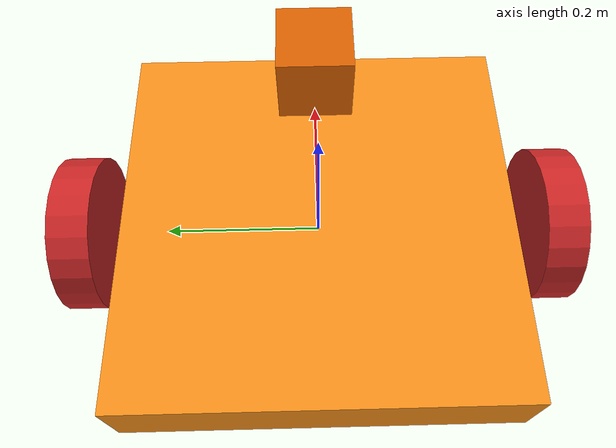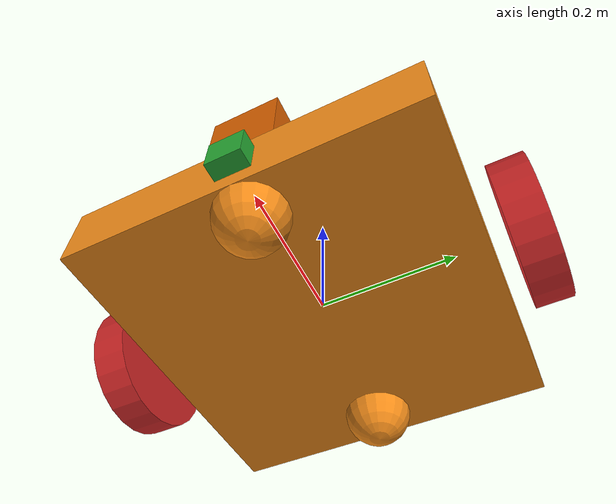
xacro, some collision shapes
<?xml version='1.0'?>
<robot name="my_robot"
    xmlns:xacro="http://www.ros.org/wiki/xacro">
 <xacro:include filename="$(find my_robot)/urdf/my_robot.gazebo" />

<xacro:property name="chassis_width" value="0.5"/>
<xacro:property name="chassis_len" value="0.5"/>
<xacro:property name="chassis_height" value="0.1"/>
<xacro:property name="wheel_radius" value="0.1"/>
<xacro:property name="wheel_depth" value="0.05"/>

<xacro:macro name="box_inertia" params="m w h d">
    <inertial>
      <mass value="${m}"/>
      <inertia ixx="${m / 12.0 * (d*d + h*h)}" ixy="0.0" ixz="0.0" iyy="${m / 12.0 * (w*w + h*h)}" iyz="0.0" izz="${m / 12.0 * (w*w + d*d)}"/>
    </inertial>
</xacro:macro>

<xacro:macro name="cylinder_inertia" params="m r h">
    <inertial>
      <mass value="${m}"/>
      <inertia ixx="${m*(3*r*r+h*h)/12}" ixy = "0" ixz = "0" iyy="${m*(3*r*r+h*h)/12}" iyz = "0" izz="${m*r*r/2}"/>
    </inertial>
</xacro:macro>

<xacro:macro name="sphere_inertia" params="m r">
    <inertial>
      <mass value="${m}"/>
      <inertia ixx="${2.0*m*(r*r)/5.0}" ixy="0.0" ixz="0.0" iyy="${2.0*m*(r*r)/5.0}" iyz="0.0" izz="${2.0*m*(r*r)/5.0}"/>
    </inertial>
</xacro:macro>

<xacro:macro name="wheel" params="name *origin">
    <link name="${name}_wheel">
    <xacro:cylinder_inertia m="5" r="${wheel_radius}" h="${wheel_depth}"/>
        <collision name='${name}_wheel_collision'>
            <origin xyz="0 0 0" rpy=" 0 ${pi/2} ${pi/2}"/>
            <geometry>
                <cylinder radius="${wheel_radius}" length="${wheel_depth}"/>
            </geometry>
        </collision>
        <visual name='${name}_wheel_visual'>
            <origin xyz="0 0 0" rpy=" 0 ${pi/2} ${pi/2}"/>
            <geometry>
                <cylinder radius="${wheel_radius}" length="${wheel_depth}"/>
           </geometry>

        </visual>

    </link>
   <gazebo reference="${name}_wheel">
        <material>Gazebo/Red</material>
   </gazebo>
   <joint type="continuous" name="${name}_wheel_hinge">
        <xacro:insert_block name="origin" />
        <child link="${name}_wheel"/>
        <parent link="chassis"/>
        <axis xyz="0 1 0" rpy="0 0 0"/>
        <limit effort="10000" velocity="1000"/>
        <dynamics damping="1.0" friction="1.0"/>
    </joint>
</xacro:macro>

    <link name="robot_footprint"></link>
    <joint name="robot_footprint_joint" type="fixed">
        <origin xyz="0 0 0" rpy="0 0 0" />
        <parent link="robot_footprint"/>
        <child link="chassis" />
    </joint>
    <link name='chassis'>
        <pose>0 0 0.1 0 0 0</pose>
        <xacro:box_inertia m="15" w="${chassis_len}" h="${chassis_width}" d="${chassis_height}"/>

        <collision name='collision'>
            <origin xyz="0 0 0" rpy=" 0 0 0"/>
            <geometry>
                 <box size="${chassis_len} ${chassis_width} ${chassis_height}"/>
            </geometry>
        </collision>
        <visual name='chassis_visual'>
            <origin xyz="0 0 0" rpy=" 0 0 0"/>
            <geometry>
                <box size="${chassis_len} ${chassis_width} ${chassis_height}"/>
            </geometry>

        </visual>
        <collision name='back_caster_collision'>
            <origin xyz="-0.20 0 -0.05" rpy=" 0 0 0"/>
            <geometry>
                <sphere radius="0.05"/>
            </geometry>
        </collision>
        <visual name='back_caster_visual'>
            <origin xyz="-0.20 0 -0.05" rpy=" 0 0 0"/>
            <geometry>
                <sphere radius="0.05"/>
            </geometry>

        </visual>

        <collision name='front_caster_collision'>
            <origin xyz="0.20 0 -0.05" rpy=" 0 0 0"/>
            <geometry>
                <sphere radius="0.0499"/>
            </geometry>
        </collision>
        <visual name='front_caster_visual'>
            <origin xyz="0.20 0 -0.05" rpy=" 0 0 0"/>
            <geometry>
                <sphere radius="0.05"/>
            </geometry>

        </visual>

    </link>

    <!-- left_wheel          -->
     <xacro:wheel name="left">
     <origin xyz="0 0.3 0" rpy="0 0 0"/>
     </xacro:wheel>
    <!-- right_wheel          -->
     <xacro:wheel name="right">

     <origin xyz="0 -0.3 0" rpy="0 0 0"/>
     </xacro:wheel>

    <!-- Camera          -->
    <link name="camera">
        <inertial>
            <mass value="0.1"/>
            <origin xyz="0.05 0.05 0.05" rpy=" 0 0 0"/>
            <inertia
          ixx="1e-6" ixy="0" ixz="0"
          iyy="1e-6" iyz="0"
          izz="1e-6"
      />
        </inertial>
        <collision name='camera_collision'>
            <origin xyz="0 0 0" rpy=" 0 0 0"/>
            <geometry>
                <box size=".05 .05 .05"/>
            </geometry>
        </collision>
        <visual name='camera_visual'>
            <origin xyz="0 0 0" rpy=" 0 0 0"/>
            <geometry>
                <box size=".05 .05 .05"/>
            </geometry>

        </visual>
    </link>
    <!-- Lidar          -->
    <link name="hokuyo">
        <inertial>
            <mass value="1e-5"/>
            <origin xyz="0 0 0" rpy=" 0 0 0"/>
            <inertia
          ixx="1e-6" ixy="0" ixz="0"
          iyy="1e-6" iyz="0"
          izz="1e-6"
      />
        </inertial>
        <collision name='hokuyo_collision'>
            <origin xyz="0 0 0" rpy=" 0 0 0"/>
            <geometry>
                <box size=".1 .1 .1"/>
            </geometry>
        </collision>
        <visual name='hokuyo_visual'>
            <origin xyz="0 0 0" rpy=" 0 0 0"/>
            <geometry>
                <mesh filename="package://my_robot/meshes/hokuyo.dae"/>
            </geometry>
        </visual>
    </link>
    <joint name="camera_joint" type="fixed">
        <origin xyz="0.25 0 0" rpy="0 0 0" />
        <axis xyz="0 1 0" rpy="0 0 0"/>
        <parent link="chassis"/>
        <child link="camera" />
    </joint>
    <joint name="hokuyo_joint" type="fixed">
        <origin xyz="0.2 0 0.1 " rpy="0 0 0" />
        <axis xyz="0 1 0" rpy="0 0 0"/>
        <parent link="chassis"/>
        <child link="hokuyo" />
    </joint>

 <link name="camera_link_optical">

 </link>
 <joint name="camera_optical_joint" type="fixed">
    <origin xyz="0 0 0" rpy="-1.5707 0 -1.5707"/>
    <parent link="camera"/>
    <child link="camera_link_optical"/>
  </joint>

    <gazebo reference="chassis">
        <material>Gazebo/Orange</material>
    </gazebo>

    <gazebo reference="camera">
        <material>Gazebo/Green</material>
    </gazebo>

</robot>
